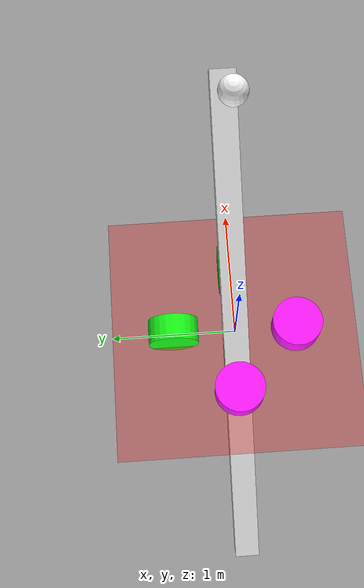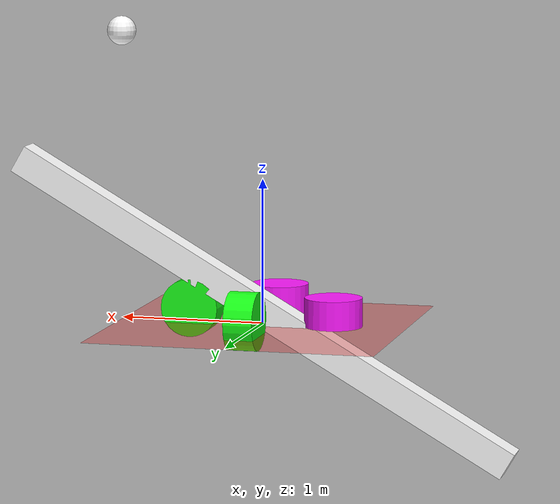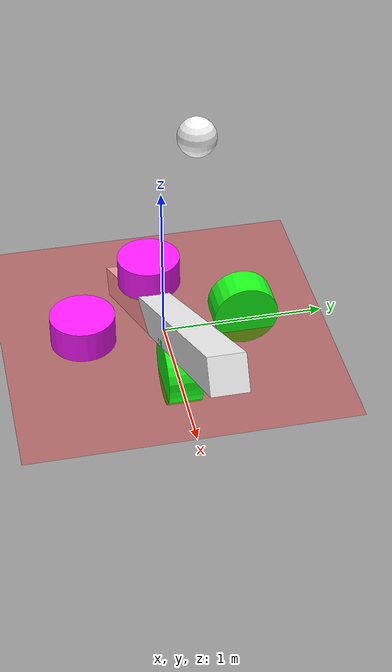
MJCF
<mujoco model="model">
	<worldbody>
		<!-- light -->
        <light diffuse=".5 .5 .5" pos="0 0 3" dir="0 0 -1"/>

		<!-- plane fixed-->
		<geom type="plane" size="1 1 0.1" rgba=".9 0 0 1"/>

		<!-- a body cylinder blue -->

		<!-- next to the last, a green cylinder fixed -->
		<!-- center -->
		<!-- make a box -->
		<geom type="box" size="2 0.1 0.1" pos="0 0 0.1" rgba="1 1 1 1" euler="0 150 0"/>
		<!-- x-axis -->
		<geom type="cylinder" size="0.2 0.1" pos="0.5 0 0.1" rgba=".1 1 .1 1" quat="0.707 0.707 0 0" />
		<geom type="cylinder" size="0.2 0.1" pos="-0.5 0 0.1" rgba="1 .1 1 1"/>
		<!-- y-axis -->
		<geom type="cylinder" size="0.2 0.1" pos="0 0.5 0.1" rgba=".1 1 .1 1" quat="0.707 0 0.707 0"/>
		<geom type="cylinder" size="0.2 0.1" pos="0 -0.5 0.1" rgba="1 .1 1 1"/>

		<!-- put an sphere on the edge of the box -->
		<body name="balon" pos="1 0 2">
			<joint type="free"/>
			<geom type="sphere" size="0.1" rgba="1 1 1 1"/>
		</body>

	</worldbody>
</mujoco>
